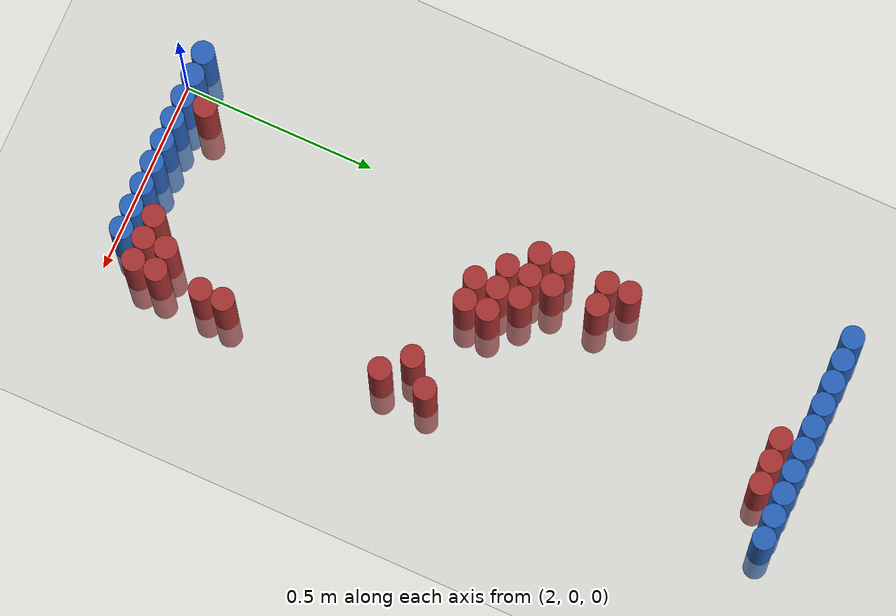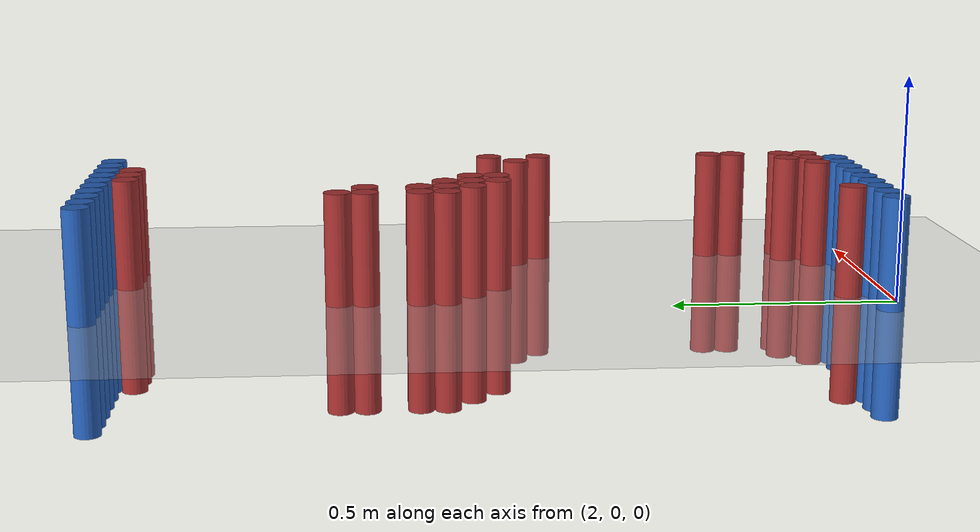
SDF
<sdf version="1.6">
 <world name="default">
  <model name="ground_plane">
   <static>1</static>
   <link name="link">
    <collision name="collision">
     <geometry><plane><normal>0 0 1</normal><size>100 100</size></plane></geometry>
     <surface><friction><ode><mu>100</mu><mu2>50</mu2></ode></friction></surface>
    </collision>
    <visual name="visual">
     <cast_shadows>0</cast_shadows>
     <geometry><plane><normal>0 0 1</normal><size>100 100</size></plane></geometry>
     <material>
      <script><uri>file://media/materials/scripts/gazebo.material</uri><name>Gazebo/Grey</name></script>
     </material>
    </visual>
   </link>
  </model>
  <model name="unit_cylinder_91">
   <static>1</static>
   <pose>1.950000 0.030000 0.000000 0.000000 0.000000 0.000000</pose>
   <link name="link">
    <inertial>
     <mass>1</mass>
     <inertia><ixx>0.145833</ixx><ixy>0</ixy><ixz>0</ixz><iyy>0.145833</iyy><iyz>0</iyz><izz>0.125</izz></inertia>
    </inertial>
    <collision name="collision">
     <geometry><cylinder><radius>0.030000</radius><length>0.5</length></cylinder></geometry>
    </collision>
    <visual name="visual">
     <geometry><cylinder><radius>0.030000</radius><length>0.5</length></cylinder></geometry>
     <material>
      <ambient>0.152000 0.379000 0.720000 1</ambient>
      <diffuse>0.152000 0.379000 0.720000 1</diffuse>
     </material>
     <material>
      <script><name>Gazebo/Grey</name><uri>file://media/materials/scripts/gazebo.material</uri></script>
     </material>
    </visual>
   </link>
  </model>
  <model name="unit_cylinder_92">
   <static>1</static>
   <pose>1.950000 1.770000 0.000000 0.000000 0.000000 0.000000</pose>
   <link name="link">
    <inertial>
     <mass>1</mass>
     <inertia><ixx>0.145833</ixx><ixy>0</ixy><ixz>0</ixz><iyy>0.145833</iyy><iyz>0</iyz><izz>0.125</izz></inertia>
    </inertial>
    <collision name="collision">
     <geometry><cylinder><radius>0.030000</radius><length>0.5</length></cylinder></geometry>
    </collision>
    <visual name="visual">
     <geometry><cylinder><radius>0.030000</radius><length>0.5</length></cylinder></geometry>
     <material>
      <ambient>0.152000 0.379000 0.720000 1</ambient>
      <diffuse>0.152000 0.379000 0.720000 1</diffuse>
     </material>
     <material>
      <script><name>Gazebo/Grey</name><uri>file://media/materials/scripts/gazebo.material</uri></script>
     </material>
    </visual>
   </link>
  </model>
  <model name="unit_cylinder_93">
   <static>1</static>
   <pose>2.010000 0.030000 0.000000 0.000000 0.000000 0.000000</pose>
   <link name="link">
    <inertial>
     <mass>1</mass>
     <inertia><ixx>0.145833</ixx><ixy>0</ixy><ixz>0</ixz><iyy>0.145833</iyy><iyz>0</iyz><izz>0.125</izz></inertia>
    </inertial>
    <collision name="collision">
     <geometry><cylinder><radius>0.030000</radius><length>0.5</length></cylinder></geometry>
    </collision>
    <visual name="visual">
     <geometry><cylinder><radius>0.030000</radius><length>0.5</length></cylinder></geometry>
     <material>
      <ambient>0.152000 0.379000 0.720000 1</ambient>
      <diffuse>0.152000 0.379000 0.720000 1</diffuse>
     </material>
     <material>
      <script><name>Gazebo/Grey</name><uri>file://media/materials/scripts/gazebo.material</uri></script>
     </material>
    </visual>
   </link>
  </model>
  <model name="unit_cylinder_94">
   <static>1</static>
   <pose>2.010000 1.770000 0.000000 0.000000 0.000000 0.000000</pose>
   <link name="link">
    <inertial>
     <mass>1</mass>
     <inertia><ixx>0.145833</ixx><ixy>0</ixy><ixz>0</ixz><iyy>0.145833</iyy><iyz>0</iyz><izz>0.125</izz></inertia>
    </inertial>
    <collision name="collision">
     <geometry><cylinder><radius>0.030000</radius><length>0.5</length></cylinder></geometry>
    </collision>
    <visual name="visual">
     <geometry><cylinder><radius>0.030000</radius><length>0.5</length></cylinder></geometry>
     <material>
      <ambient>0.152000 0.379000 0.720000 1</ambient>
      <diffuse>0.152000 0.379000 0.720000 1</diffuse>
     </material>
     <material>
      <script><name>Gazebo/Grey</name><uri>file://media/materials/scripts/gazebo.material</uri></script>
     </material>
    </visual>
   </link>
  </model>
  <model name="unit_cylinder_95">
   <static>1</static>
   <pose>2.070000 1.770000 0.000000 0.000000 0.000000 0.000000</pose>
   <link name="link">
    <inertial>
     <mass>1</mass>
     <inertia><ixx>0.145833</ixx><ixy>0</ixy><ixz>0</ixz><iyy>0.145833</iyy><iyz>0</iyz><izz>0.125</izz></inertia>
    </inertial>
    <collision name="collision">
     <geometry><cylinder><radius>0.030000</radius><length>0.5</length></cylinder></geometry>
    </collision>
    <visual name="visual">
     <geometry><cylinder><radius>0.030000</radius><length>0.5</length></cylinder></geometry>
     <material>
      <ambient>0.152000 0.379000 0.720000 1</ambient>
      <diffuse>0.152000 0.379000 0.720000 1</diffuse>
     </material>
     <material>
      <script><name>Gazebo/Grey</name><uri>file://media/materials/scripts/gazebo.material</uri></script>
     </material>
    </visual>
   </link>
  </model>
  <model name="unit_cylinder_96">
   <static>1</static>
   <pose>2.130000 1.770000 0.000000 0.000000 0.000000 0.000000</pose>
   <link name="link">
    <inertial>
     <mass>1</mass>
     <inertia><ixx>0.145833</ixx><ixy>0</ixy><ixz>0</ixz><iyy>0.145833</iyy><iyz>0</iyz><izz>0.125</izz></inertia>
    </inertial>
    <collision name="collision">
     <geometry><cylinder><radius>0.030000</radius><length>0.5</length></cylinder></geometry>
    </collision>
    <visual name="visual">
     <geometry><cylinder><radius>0.030000</radius><length>0.5</length></cylinder></geometry>
     <material>
      <ambient>0.152000 0.379000 0.720000 1</ambient>
      <diffuse>0.152000 0.379000 0.720000 1</diffuse>
     </material>
     <material>
      <script><name>Gazebo/Grey</name><uri>file://media/materials/scripts/gazebo.material</uri></script>
     </material>
    </visual>
   </link>
  </model>
  <model name="unit_cylinder_97">
   <static>1</static>
   <pose>2.190000 1.770000 0.000000 0.000000 0.000000 0.000000</pose>
   <link name="link">
    <inertial>
     <mass>1</mass>
     <inertia><ixx>0.145833</ixx><ixy>0</ixy><ixz>0</ixz><iyy>0.145833</iyy><iyz>0</iyz><izz>0.125</izz></inertia>
    </inertial>
    <collision name="collision">
     <geometry><cylinder><radius>0.030000</radius><length>0.5</length></cylinder></geometry>
    </collision>
    <visual name="visual">
     <geometry><cylinder><radius>0.030000</radius><length>0.5</length></cylinder></geometry>
     <material>
      <ambient>0.152000 0.379000 0.720000 1</ambient>
      <diffuse>0.152000 0.379000 0.720000 1</diffuse>
     </material>
     <material>
      <script><name>Gazebo/Grey</name><uri>file://media/materials/scripts/gazebo.material</uri></script>
     </material>
    </visual>
   </link>
  </model>
  <model name="unit_cylinder_98">
   <static>1</static>
   <pose>2.250000 1.770000 0.000000 0.000000 0.000000 0.000000</pose>
   <link name="link">
    <inertial>
     <mass>1</mass>
     <inertia><ixx>0.145833</ixx><ixy>0</ixy><ixz>0</ixz><iyy>0.145833</iyy><iyz>0</iyz><izz>0.125</izz></inertia>
    </inertial>
    <collision name="collision">
     <geometry><cylinder><radius>0.030000</radius><length>0.5</length></cylinder></geometry>
    </collision>
    <visual name="visual">
     <geometry><cylinder><radius>0.030000</radius><length>0.5</length></cylinder></geometry>
     <material>
      <ambient>0.152000 0.379000 0.720000 1</ambient>
      <diffuse>0.152000 0.379000 0.720000 1</diffuse>
     </material>
     <material>
      <script><name>Gazebo/Grey</name><uri>file://media/materials/scripts/gazebo.material</uri></script>
     </material>
    </visual>
   </link>
  </model>
  <model name="unit_cylinder_99">
   <static>1</static>
   <pose>2.310000 1.770000 0.000000 0.000000 0.000000 0.000000</pose>
   <link name="link">
    <inertial>
     <mass>1</mass>
     <inertia><ixx>0.145833</ixx><ixy>0</ixy><ixz>0</ixz><iyy>0.145833</iyy><iyz>0</iyz><izz>0.125</izz></inertia>
    </inertial>
    <collision name="collision">
     <geometry><cylinder><radius>0.030000</radius><length>0.5</length></cylinder></geometry>
    </collision>
    <visual name="visual">
     <geometry><cylinder><radius>0.030000</radius><length>0.5</length></cylinder></geometry>
     <material>
      <ambient>0.152000 0.379000 0.720000 1</ambient>
      <diffuse>0.152000 0.379000 0.720000 1</diffuse>
     </material>
     <material>
      <script><name>Gazebo/Grey</name><uri>file://media/materials/scripts/gazebo.material</uri></script>
     </material>
    </visual>
   </link>
  </model>
  <model name="unit_cylinder_100">
   <static>1</static>
   <pose>2.370000 1.770000 0.000000 0.000000 0.000000 0.000000</pose>
   <link name="link">
    <inertial>
     <mass>1</mass>
     <inertia><ixx>0.145833</ixx><ixy>0</ixy><ixz>0</ixz><iyy>0.145833</iyy><iyz>0</iyz><izz>0.125</izz></inertia>
    </inertial>
    <collision name="collision">
     <geometry><cylinder><radius>0.030000</radius><length>0.5</length></cylinder></geometry>
    </collision>
    <visual name="visual">
     <geometry><cylinder><radius>0.030000</radius><length>0.5</length></cylinder></geometry>
     <material>
      <ambient>0.152000 0.379000 0.720000 1</ambient>
      <diffuse>0.152000 0.379000 0.720000 1</diffuse>
     </material>
     <material>
      <script><name>Gazebo/Grey</name><uri>file://media/materials/scripts/gazebo.material</uri></script>
     </material>
    </visual>
   </link>
  </model>
  <model name="unit_cylinder_101">
   <static>1</static>
   <pose>2.430000 1.770000 0.000000 0.000000 0.000000 0.000000</pose>
   <link name="link">
    <inertial>
     <mass>1</mass>
     <inertia><ixx>0.145833</ixx><ixy>0</ixy><ixz>0</ixz><iyy>0.145833</iyy><iyz>0</iyz><izz>0.125</izz></inertia>
    </inertial>
    <collision name="collision">
     <geometry><cylinder><radius>0.030000</radius><length>0.5</length></cylinder></geometry>
    </collision>
    <visual name="visual">
     <geometry><cylinder><radius>0.030000</radius><length>0.5</length></cylinder></geometry>
     <material>
      <ambient>0.152000 0.379000 0.720000 1</ambient>
      <diffuse>0.152000 0.379000 0.720000 1</diffuse>
     </material>
     <material>
      <script><name>Gazebo/Grey</name><uri>file://media/materials/scripts/gazebo.material</uri></script>
     </material>
    </visual>
   </link>
  </model>
  <model name="unit_cylinder_102">
   <static>1</static>
   <pose>2.490000 1.770000 0.000000 0.000000 0.000000 0.000000</pose>
   <link name="link">
    <inertial>
     <mass>1</mass>
     <inertia><ixx>0.145833</ixx><ixy>0</ixy><ixz>0</ixz><iyy>0.145833</iyy><iyz>0</iyz><izz>0.125</izz></inertia>
    </inertial>
    <collision name="collision">
     <geometry><cylinder><radius>0.030000</radius><length>0.5</length></cylinder></geometry>
    </collision>
    <visual name="visual">
     <geometry><cylinder><radius>0.030000</radius><length>0.5</length></cylinder></geometry>
     <material>
      <ambient>0.152000 0.379000 0.720000 1</ambient>
      <diffuse>0.152000 0.379000 0.720000 1</diffuse>
     </material>
     <material>
      <script><name>Gazebo/Grey</name><uri>file://media/materials/scripts/gazebo.material</uri></script>
     </material>
    </visual>
   </link>
  </model>
  <model name="unit_cylinder_125">
   <static>1</static>
   <pose>2.250000 1.710000 0.000000 0.000000 0.000000 0.000000</pose>
   <link name="link">
    <inertial>
     <mass>1</mass>
     <inertia><ixx>0.145833</ixx><ixy>0</ixy><ixz>0</ixz><iyy>0.145833</iyy><iyz>0</iyz><izz>0.125</izz></inertia>
    </inertial>
    <collision name="collision">
     <geometry><cylinder><radius>0.030000</radius><length>0.5</length></cylinder></geometry>
    </collision>
    <visual name="visual">
     <geometry><cylinder><radius>0.030000</radius><length>0.5</length></cylinder></geometry>
     <material>
      <ambient>0.648000 0.192000 0.192000 1</ambient>
      <diffuse>0.648000 0.192000 0.192000 1</diffuse>
     </material>
     <material>
      <script><name>Gazebo/Grey</name><uri>file://media/materials/scripts/gazebo.material</uri></script>
     </material>
    </visual>
   </link>
  </model>
  <model name="unit_cylinder_126">
   <static>1</static>
   <pose>2.310000 1.710000 0.000000 0.000000 0.000000 0.000000</pose>
   <link name="link">
    <inertial>
     <mass>1</mass>
     <inertia><ixx>0.145833</ixx><ixy>0</ixy><ixz>0</ixz><iyy>0.145833</iyy><iyz>0</iyz><izz>0.125</izz></inertia>
    </inertial>
    <collision name="collision">
     <geometry><cylinder><radius>0.030000</radius><length>0.5</length></cylinder></geometry>
    </collision>
    <visual name="visual">
     <geometry><cylinder><radius>0.030000</radius><length>0.5</length></cylinder></geometry>
     <material>
      <ambient>0.648000 0.192000 0.192000 1</ambient>
      <diffuse>0.648000 0.192000 0.192000 1</diffuse>
     </material>
     <material>
      <script><name>Gazebo/Grey</name><uri>file://media/materials/scripts/gazebo.material</uri></script>
     </material>
    </visual>
   </link>
  </model>
  <model name="unit_cylinder_127">
   <static>1</static>
   <pose>2.370000 1.710000 0.000000 0.000000 0.000000 0.000000</pose>
   <link name="link">
    <inertial>
     <mass>1</mass>
     <inertia><ixx>0.145833</ixx><ixy>0</ixy><ixz>0</ixz><iyy>0.145833</iyy><iyz>0</iyz><izz>0.125</izz></inertia>
    </inertial>
    <collision name="collision">
     <geometry><cylinder><radius>0.030000</radius><length>0.5</length></cylinder></geometry>
    </collision>
    <visual name="visual">
     <geometry><cylinder><radius>0.030000</radius><length>0.5</length></cylinder></geometry>
     <material>
      <ambient>0.648000 0.192000 0.192000 1</ambient>
      <diffuse>0.648000 0.192000 0.192000 1</diffuse>
     </material>
     <material>
      <script><name>Gazebo/Grey</name><uri>file://media/materials/scripts/gazebo.material</uri></script>
     </material>
    </visual>
   </link>
  </model>
  <model name="unit_cylinder_165">
   <static>1</static>
   <pose>2.070000 1.230000 0.000000 0.000000 0.000000 0.000000</pose>
   <link name="link">
    <inertial>
     <mass>1</mass>
     <inertia><ixx>0.145833</ixx><ixy>0</ixy><ixz>0</ixz><iyy>0.145833</iyy><iyz>0</iyz><izz>0.125</izz></inertia>
    </inertial>
    <collision name="collision">
     <geometry><cylinder><radius>0.030000</radius><length>0.5</length></cylinder></geometry>
    </collision>
    <visual name="visual">
     <geometry><cylinder><radius>0.030000</radius><length>0.5</length></cylinder></geometry>
     <material>
      <ambient>0.648000 0.192000 0.192000 1</ambient>
      <diffuse>0.648000 0.192000 0.192000 1</diffuse>
     </material>
     <material>
      <script><name>Gazebo/Grey</name><uri>file://media/materials/scripts/gazebo.material</uri></script>
     </material>
    </visual>
   </link>
  </model>
  <model name="unit_cylinder_172">
   <static>1</static>
   <pose>2.070000 1.170000 0.000000 0.000000 0.000000 0.000000</pose>
   <link name="link">
    <inertial>
     <mass>1</mass>
     <inertia><ixx>0.145833</ixx><ixy>0</ixy><ixz>0</ixz><iyy>0.145833</iyy><iyz>0</iyz><izz>0.125</izz></inertia>
    </inertial>
    <collision name="collision">
     <geometry><cylinder><radius>0.030000</radius><length>0.5</length></cylinder></geometry>
    </collision>
    <visual name="visual">
     <geometry><cylinder><radius>0.030000</radius><length>0.5</length></cylinder></geometry>
     <material>
      <ambient>0.648000 0.192000 0.192000 1</ambient>
      <diffuse>0.648000 0.192000 0.192000 1</diffuse>
     </material>
     <material>
      <script><name>Gazebo/Grey</name><uri>file://media/materials/scripts/gazebo.material</uri></script>
     </material>
    </visual>
   </link>
  </model>
  <model name="unit_cylinder_173">
   <static>1</static>
   <pose>2.130000 1.170000 0.000000 0.000000 0.000000 0.000000</pose>
   <link name="link">
    <inertial>
     <mass>1</mass>
     <inertia><ixx>0.145833</ixx><ixy>0</ixy><ixz>0</ixz><iyy>0.145833</iyy><iyz>0</iyz><izz>0.125</izz></inertia>
    </inertial>
    <collision name="collision">
     <geometry><cylinder><radius>0.030000</radius><length>0.5</length></cylinder></geometry>
    </collision>
    <visual name="visual">
     <geometry><cylinder><radius>0.030000</radius><length>0.5</length></cylinder></geometry>
     <material>
      <ambient>0.648000 0.192000 0.192000 1</ambient>
      <diffuse>0.648000 0.192000 0.192000 1</diffuse>
     </material>
     <material>
      <script><name>Gazebo/Grey</name><uri>file://media/materials/scripts/gazebo.material</uri></script>
     </material>
    </visual>
   </link>
  </model>
  <model name="unit_cylinder_178">
   <static>1</static>
   <pose>2.070000 1.050000 0.000000 0.000000 0.000000 0.000000</pose>
   <link name="link">
    <inertial>
     <mass>1</mass>
     <inertia><ixx>0.145833</ixx><ixy>0</ixy><ixz>0</ixz><iyy>0.145833</iyy><iyz>0</iyz><izz>0.125</izz></inertia>
    </inertial>
    <collision name="collision">
     <geometry><cylinder><radius>0.030000</radius><length>0.5</length></cylinder></geometry>
    </collision>
    <visual name="visual">
     <geometry><cylinder><radius>0.030000</radius><length>0.5</length></cylinder></geometry>
     <material>
      <ambient>0.648000 0.192000 0.192000 1</ambient>
      <diffuse>0.648000 0.192000 0.192000 1</diffuse>
     </material>
     <material>
      <script><name>Gazebo/Grey</name><uri>file://media/materials/scripts/gazebo.material</uri></script>
     </material>
    </visual>
   </link>
  </model>
  <model name="unit_cylinder_179">
   <static>1</static>
   <pose>2.130000 1.050000 0.000000 0.000000 0.000000 0.000000</pose>
   <link name="link">
    <inertial>
     <mass>1</mass>
     <inertia><ixx>0.145833</ixx><ixy>0</ixy><ixz>0</ixz><iyy>0.145833</iyy><iyz>0</iyz><izz>0.125</izz></inertia>
    </inertial>
    <collision name="collision">
     <geometry><cylinder><radius>0.030000</radius><length>0.5</length></cylinder></geometry>
    </collision>
    <visual name="visual">
     <geometry><cylinder><radius>0.030000</radius><length>0.5</length></cylinder></geometry>
     <material>
      <ambient>0.648000 0.192000 0.192000 1</ambient>
      <diffuse>0.648000 0.192000 0.192000 1</diffuse>
     </material>
     <material>
      <script><name>Gazebo/Grey</name><uri>file://media/materials/scripts/gazebo.material</uri></script>
     </material>
    </visual>
   </link>
  </model>
  <model name="unit_cylinder_181">
   <static>1</static>
   <pose>2.070000 0.990000 0.000000 0.000000 0.000000 0.000000</pose>
   <link name="link">
    <inertial>
     <mass>1</mass>
     <inertia><ixx>0.145833</ixx><ixy>0</ixy><ixz>0</ixz><iyy>0.145833</iyy><iyz>0</iyz><izz>0.125</izz></inertia>
    </inertial>
    <collision name="collision">
     <geometry><cylinder><radius>0.030000</radius><length>0.5</length></cylinder></geometry>
    </collision>
    <visual name="visual">
     <geometry><cylinder><radius>0.030000</radius><length>0.5</length></cylinder></geometry>
     <material>
      <ambient>0.648000 0.192000 0.192000 1</ambient>
      <diffuse>0.648000 0.192000 0.192000 1</diffuse>
     </material>
     <material>
      <script><name>Gazebo/Grey</name><uri>file://media/materials/scripts/gazebo.material</uri></script>
     </material>
    </visual>
   </link>
  </model>
  <model name="unit_cylinder_182">
   <static>1</static>
   <pose>2.130000 0.990000 0.000000 0.000000 0.000000 0.000000</pose>
   <link name="link">
    <inertial>
     <mass>1</mass>
     <inertia><ixx>0.145833</ixx><ixy>0</ixy><ixz>0</ixz><iyy>0.145833</iyy><iyz>0</iyz><izz>0.125</izz></inertia>
    </inertial>
    <collision name="collision">
     <geometry><cylinder><radius>0.030000</radius><length>0.5</length></cylinder></geometry>
    </collision>
    <visual name="visual">
     <geometry><cylinder><radius>0.030000</radius><length>0.5</length></cylinder></geometry>
     <material>
      <ambient>0.648000 0.192000 0.192000 1</ambient>
      <diffuse>0.648000 0.192000 0.192000 1</diffuse>
     </material>
     <material>
      <script><name>Gazebo/Grey</name><uri>file://media/materials/scripts/gazebo.material</uri></script>
     </material>
    </visual>
   </link>
  </model>
  <model name="unit_cylinder_183">
   <static>1</static>
   <pose>2.190000 0.990000 0.000000 0.000000 0.000000 0.000000</pose>
   <link name="link">
    <inertial>
     <mass>1</mass>
     <inertia><ixx>0.145833</ixx><ixy>0</ixy><ixz>0</ixz><iyy>0.145833</iyy><iyz>0</iyz><izz>0.125</izz></inertia>
    </inertial>
    <collision name="collision">
     <geometry><cylinder><radius>0.030000</radius><length>0.5</length></cylinder></geometry>
    </collision>
    <visual name="visual">
     <geometry><cylinder><radius>0.030000</radius><length>0.5</length></cylinder></geometry>
     <material>
      <ambient>0.648000 0.192000 0.192000 1</ambient>
      <diffuse>0.648000 0.192000 0.192000 1</diffuse>
     </material>
     <material>
      <script><name>Gazebo/Grey</name><uri>file://media/materials/scripts/gazebo.material</uri></script>
     </material>
    </visual>
   </link>
  </model>
  <model name="unit_cylinder_184">
   <static>1</static>
   <pose>2.130000 0.930000 0.000000 0.000000 0.000000 0.000000</pose>
   <link name="link">
    <inertial>
     <mass>1</mass>
     <inertia><ixx>0.145833</ixx><ixy>0</ixy><ixz>0</ixz><iyy>0.145833</iyy><iyz>0</iyz><izz>0.125</izz></inertia>
    </inertial>
    <collision name="collision">
     <geometry><cylinder><radius>0.030000</radius><length>0.5</length></cylinder></geometry>
    </collision>
    <visual name="visual">
     <geometry><cylinder><radius>0.030000</radius><length>0.5</length></cylinder></geometry>
     <material>
      <ambient>0.648000 0.192000 0.192000 1</ambient>
      <diffuse>0.648000 0.192000 0.192000 1</diffuse>
     </material>
     <material>
      <script><name>Gazebo/Grey</name><uri>file://media/materials/scripts/gazebo.material</uri></script>
     </material>
    </visual>
   </link>
  </model>
  <model name="unit_cylinder_185">
   <static>1</static>
   <pose>2.190000 0.930000 0.000000 0.000000 0.000000 0.000000</pose>
   <link name="link">
    <inertial>
     <mass>1</mass>
     <inertia><ixx>0.145833</ixx><ixy>0</ixy><ixz>0</ixz><iyy>0.145833</iyy><iyz>0</iyz><izz>0.125</izz></inertia>
    </inertial>
    <collision name="collision">
     <geometry><cylinder><radius>0.030000</radius><length>0.5</length></cylinder></geometry>
    </collision>
    <visual name="visual">
     <geometry><cylinder><radius>0.030000</radius><length>0.5</length></cylinder></geometry>
     <material>
      <ambient>0.648000 0.192000 0.192000 1</ambient>
      <diffuse>0.648000 0.192000 0.192000 1</diffuse>
     </material>
     <material>
      <script><name>Gazebo/Grey</name><uri>file://media/materials/scripts/gazebo.material</uri></script>
     </material>
    </visual>
   </link>
  </model>
  <model name="unit_cylinder_186">
   <static>1</static>
   <pose>2.250000 0.930000 0.000000 0.000000 0.000000 0.000000</pose>
   <link name="link">
    <inertial>
     <mass>1</mass>
     <inertia><ixx>0.145833</ixx><ixy>0</ixy><ixz>0</ixz><iyy>0.145833</iyy><iyz>0</iyz><izz>0.125</izz></inertia>
    </inertial>
    <collision name="collision">
     <geometry><cylinder><radius>0.030000</radius><length>0.5</length></cylinder></geometry>
    </collision>
    <visual name="visual">
     <geometry><cylinder><radius>0.030000</radius><length>0.5</length></cylinder></geometry>
     <material>
      <ambient>0.648000 0.192000 0.192000 1</ambient>
      <diffuse>0.648000 0.192000 0.192000 1</diffuse>
     </material>
     <material>
      <script><name>Gazebo/Grey</name><uri>file://media/materials/scripts/gazebo.material</uri></script>
     </material>
    </visual>
   </link>
  </model>
  <model name="unit_cylinder_187">
   <static>1</static>
   <pose>2.190000 0.870000 0.000000 0.000000 0.000000 0.000000</pose>
   <link name="link">
    <inertial>
     <mass>1</mass>
     <inertia><ixx>0.145833</ixx><ixy>0</ixy><ixz>0</ixz><iyy>0.145833</iyy><iyz>0</iyz><izz>0.125</izz></inertia>
    </inertial>
    <collision name="collision">
     <geometry><cylinder><radius>0.030000</radius><length>0.5</length></cylinder></geometry>
    </collision>
    <visual name="visual">
     <geometry><cylinder><radius>0.030000</radius><length>0.5</length></cylinder></geometry>
     <material>
      <ambient>0.648000 0.192000 0.192000 1</ambient>
      <diffuse>0.648000 0.192000 0.192000 1</diffuse>
     </material>
     <material>
      <script><name>Gazebo/Grey</name><uri>file://media/materials/scripts/gazebo.material</uri></script>
     </material>
    </visual>
   </link>
  </model>
  <model name="unit_cylinder_188">
   <static>1</static>
   <pose>2.250000 0.870000 0.000000 0.000000 0.000000 0.000000</pose>
   <link name="link">
    <inertial>
     <mass>1</mass>
     <inertia><ixx>0.145833</ixx><ixy>0</ixy><ixz>0</ixz><iyy>0.145833</iyy><iyz>0</iyz><izz>0.125</izz></inertia>
    </inertial>
    <collision name="collision">
     <geometry><cylinder><radius>0.030000</radius><length>0.5</length></cylinder></geometry>
    </collision>
    <visual name="visual">
     <geometry><cylinder><radius>0.030000</radius><length>0.5</length></cylinder></geometry>
     <material>
      <ambient>0.648000 0.192000 0.192000 1</ambient>
      <diffuse>0.648000 0.192000 0.192000 1</diffuse>
     </material>
     <material>
      <script><name>Gazebo/Grey</name><uri>file://media/materials/scripts/gazebo.material</uri></script>
     </material>
    </visual>
   </link>
  </model>
  <model name="unit_cylinder_189">
   <static>1</static>
   <pose>2.490000 0.870000 0.000000 0.000000 0.000000 0.000000</pose>
   <link name="link">
    <inertial>
     <mass>1</mass>
     <inertia><ixx>0.145833</ixx><ixy>0</ixy><ixz>0</ixz><iyy>0.145833</iyy><iyz>0</iyz><izz>0.125</izz></inertia>
    </inertial>
    <collision name="collision">
     <geometry><cylinder><radius>0.030000</radius><length>0.5</length></cylinder></geometry>
    </collision>
    <visual name="visual">
     <geometry><cylinder><radius>0.030000</radius><length>0.5</length></cylinder></geometry>
     <material>
      <ambient>0.648000 0.192000 0.192000 1</ambient>
      <diffuse>0.648000 0.192000 0.192000 1</diffuse>
     </material>
     <material>
      <script><name>Gazebo/Grey</name><uri>file://media/materials/scripts/gazebo.material</uri></script>
     </material>
    </visual>
   </link>
  </model>
  <model name="unit_cylinder_190">
   <static>1</static>
   <pose>2.430000 0.810000 0.000000 0.000000 0.000000 0.000000</pose>
   <link name="link">
    <inertial>
     <mass>1</mass>
     <inertia><ixx>0.145833</ixx><ixy>0</ixy><ixz>0</ixz><iyy>0.145833</iyy><iyz>0</iyz><izz>0.125</izz></inertia>
    </inertial>
    <collision name="collision">
     <geometry><cylinder><radius>0.030000</radius><length>0.5</length></cylinder></geometry>
    </collision>
    <visual name="visual">
     <geometry><cylinder><radius>0.030000</radius><length>0.5</length></cylinder></geometry>
     <material>
      <ambient>0.648000 0.192000 0.192000 1</ambient>
      <diffuse>0.648000 0.192000 0.192000 1</diffuse>
     </material>
     <material>
      <script><name>Gazebo/Grey</name><uri>file://media/materials/scripts/gazebo.material</uri></script>
     </material>
    </visual>
   </link>
  </model>
  <model name="unit_cylinder_192">
   <static>1</static>
   <pose>2.490000 0.750000 0.000000 0.000000 0.000000 0.000000</pose>
   <link name="link">
    <inertial>
     <mass>1</mass>
     <inertia><ixx>0.145833</ixx><ixy>0</ixy><ixz>0</ixz><iyy>0.145833</iyy><iyz>0</iyz><izz>0.125</izz></inertia>
    </inertial>
    <collision name="collision">
     <geometry><cylinder><radius>0.030000</radius><length>0.5</length></cylinder></geometry>
    </collision>
    <visual name="visual">
     <geometry><cylinder><radius>0.030000</radius><length>0.5</length></cylinder></geometry>
     <material>
      <ambient>0.648000 0.192000 0.192000 1</ambient>
      <diffuse>0.648000 0.192000 0.192000 1</diffuse>
     </material>
     <material>
      <script><name>Gazebo/Grey</name><uri>file://media/materials/scripts/gazebo.material</uri></script>
     </material>
    </visual>
   </link>
  </model>
  <model name="unit_cylinder_209">
   <static>1</static>
   <pose>2.490000 0.330000 0.000000 0.000000 0.000000 0.000000</pose>
   <link name="link">
    <inertial>
     <mass>1</mass>
     <inertia><ixx>0.145833</ixx><ixy>0</ixy><ixz>0</ixz><iyy>0.145833</iyy><iyz>0</iyz><izz>0.125</izz></inertia>
    </inertial>
    <collision name="collision">
     <geometry><cylinder><radius>0.030000</radius><length>0.5</length></cylinder></geometry>
    </collision>
    <visual name="visual">
     <geometry><cylinder><radius>0.030000</radius><length>0.5</length></cylinder></geometry>
     <material>
      <ambient>0.648000 0.192000 0.192000 1</ambient>
      <diffuse>0.648000 0.192000 0.192000 1</diffuse>
     </material>
     <material>
      <script><name>Gazebo/Grey</name><uri>file://media/materials/scripts/gazebo.material</uri></script>
     </material>
    </visual>
   </link>
  </model>
  <model name="unit_cylinder_215">
   <static>1</static>
   <pose>2.490000 0.270000 0.000000 0.000000 0.000000 0.000000</pose>
   <link name="link">
    <inertial>
     <mass>1</mass>
     <inertia><ixx>0.145833</ixx><ixy>0</ixy><ixz>0</ixz><iyy>0.145833</iyy><iyz>0</iyz><izz>0.125</izz></inertia>
    </inertial>
    <collision name="collision">
     <geometry><cylinder><radius>0.030000</radius><length>0.5</length></cylinder></geometry>
    </collision>
    <visual name="visual">
     <geometry><cylinder><radius>0.030000</radius><length>0.5</length></cylinder></geometry>
     <material>
      <ambient>0.648000 0.192000 0.192000 1</ambient>
      <diffuse>0.648000 0.192000 0.192000 1</diffuse>
     </material>
     <material>
      <script><name>Gazebo/Grey</name><uri>file://media/materials/scripts/gazebo.material</uri></script>
     </material>
    </visual>
   </link>
  </model>
  <model name="unit_cylinder_218">
   <static>1</static>
   <pose>2.430000 0.150000 0.000000 0.000000 0.000000 0.000000</pose>
   <link name="link">
    <inertial>
     <mass>1</mass>
     <inertia><ixx>0.145833</ixx><ixy>0</ixy><ixz>0</ixz><iyy>0.145833</iyy><iyz>0</iyz><izz>0.125</izz></inertia>
    </inertial>
    <collision name="collision">
     <geometry><cylinder><radius>0.030000</radius><length>0.5</length></cylinder></geometry>
    </collision>
    <visual name="visual">
     <geometry><cylinder><radius>0.030000</radius><length>0.5</length></cylinder></geometry>
     <material>
      <ambient>0.648000 0.192000 0.192000 1</ambient>
      <diffuse>0.648000 0.192000 0.192000 1</diffuse>
     </material>
     <material>
      <script><name>Gazebo/Grey</name><uri>file://media/materials/scripts/gazebo.material</uri></script>
     </material>
    </visual>
   </link>
  </model>
  <model name="unit_cylinder_219">
   <static>1</static>
   <pose>2.490000 0.150000 0.000000 0.000000 0.000000 0.000000</pose>
   <link name="link">
    <inertial>
     <mass>1</mass>
     <inertia><ixx>0.145833</ixx><ixy>0</ixy><ixz>0</ixz><iyy>0.145833</iyy><iyz>0</iyz><izz>0.125</izz></inertia>
    </inertial>
    <collision name="collision">
     <geometry><cylinder><radius>0.030000</radius><length>0.5</length></cylinder></geometry>
    </collision>
    <visual name="visual">
     <geometry><cylinder><radius>0.030000</radius><length>0.5</length></cylinder></geometry>
     <material>
      <ambient>0.648000 0.192000 0.192000 1</ambient>
      <diffuse>0.648000 0.192000 0.192000 1</diffuse>
     </material>
     <material>
      <script><name>Gazebo/Grey</name><uri>file://media/materials/scripts/gazebo.material</uri></script>
     </material>
    </visual>
   </link>
  </model>
  <model name="unit_cylinder_224">
   <static>1</static>
   <pose>2.070000 0.090000 0.000000 0.000000 0.000000 0.000000</pose>
   <link name="link">
    <inertial>
     <mass>1</mass>
     <inertia><ixx>0.145833</ixx><ixy>0</ixy><ixz>0</ixz><iyy>0.145833</iyy><iyz>0</iyz><izz>0.125</izz></inertia>
    </inertial>
    <collision name="collision">
     <geometry><cylinder><radius>0.030000</radius><length>0.5</length></cylinder></geometry>
    </collision>
    <visual name="visual">
     <geometry><cylinder><radius>0.030000</radius><length>0.5</length></cylinder></geometry>
     <material>
      <ambient>0.648000 0.192000 0.192000 1</ambient>
      <diffuse>0.648000 0.192000 0.192000 1</diffuse>
     </material>
     <material>
      <script><name>Gazebo/Grey</name><uri>file://media/materials/scripts/gazebo.material</uri></script>
     </material>
    </visual>
   </link>
  </model>
  <model name="unit_cylinder_225">
   <static>1</static>
   <pose>2.370000 0.090000 0.000000 0.000000 0.000000 0.000000</pose>
   <link name="link">
    <inertial>
     <mass>1</mass>
     <inertia><ixx>0.145833</ixx><ixy>0</ixy><ixz>0</ixz><iyy>0.145833</iyy><iyz>0</iyz><izz>0.125</izz></inertia>
    </inertial>
    <collision name="collision">
     <geometry><cylinder><radius>0.030000</radius><length>0.5</length></cylinder></geometry>
    </collision>
    <visual name="visual">
     <geometry><cylinder><radius>0.030000</radius><length>0.5</length></cylinder></geometry>
     <material>
      <ambient>0.648000 0.192000 0.192000 1</ambient>
      <diffuse>0.648000 0.192000 0.192000 1</diffuse>
     </material>
     <material>
      <script><name>Gazebo/Grey</name><uri>file://media/materials/scripts/gazebo.material</uri></script>
     </material>
    </visual>
   </link>
  </model>
  <model name="unit_cylinder_226">
   <static>1</static>
   <pose>2.430000 0.090000 0.000000 0.000000 0.000000 0.000000</pose>
   <link name="link">
    <inertial>
     <mass>1</mass>
     <inertia><ixx>0.145833</ixx><ixy>0</ixy><ixz>0</ixz><iyy>0.145833</iyy><iyz>0</iyz><izz>0.125</izz></inertia>
    </inertial>
    <collision name="collision">
     <geometry><cylinder><radius>0.030000</radius><length>0.5</length></cylinder></geometry>
    </collision>
    <visual name="visual">
     <geometry><cylinder><radius>0.030000</radius><length>0.5</length></cylinder></geometry>
     <material>
      <ambient>0.648000 0.192000 0.192000 1</ambient>
      <diffuse>0.648000 0.192000 0.192000 1</diffuse>
     </material>
     <material>
      <script><name>Gazebo/Grey</name><uri>file://media/materials/scripts/gazebo.material</uri></script>
     </material>
    </visual>
   </link>
  </model>
  <model name="unit_cylinder_227">
   <static>1</static>
   <pose>2.490000 0.090000 0.000000 0.000000 0.000000 0.000000</pose>
   <link name="link">
    <inertial>
     <mass>1</mass>
     <inertia><ixx>0.145833</ixx><ixy>0</ixy><ixz>0</ixz><iyy>0.145833</iyy><iyz>0</iyz><izz>0.125</izz></inertia>
    </inertial>
    <collision name="collision">
     <geometry><cylinder><radius>0.030000</radius><length>0.5</length></cylinder></geometry>
    </collision>
    <visual name="visual">
     <geometry><cylinder><radius>0.030000</radius><length>0.5</length></cylinder></geometry>
     <material>
      <ambient>0.648000 0.192000 0.192000 1</ambient>
      <diffuse>0.648000 0.192000 0.192000 1</diffuse>
     </material>
     <material>
      <script><name>Gazebo/Grey</name><uri>file://media/materials/scripts/gazebo.material</uri></script>
     </material>
    </visual>
   </link>
  </model>
  <model name="unit_cylinder_243">
   <static>1</static>
   <pose>2.070000 0.030000 0.000000 0.000000 0.000000 0.000000</pose>
   <link name="link">
    <inertial>
     <mass>1</mass>
     <inertia><ixx>0.145833</ixx><ixy>0</ixy><ixz>0</ixz><iyy>0.145833</iyy><iyz>0</iyz><izz>0.125</izz></inertia>
    </inertial>
    <collision name="collision">
     <geometry><cylinder><radius>0.030000</radius><length>0.5</length></cylinder></geometry>
    </collision>
    <visual name="visual">
     <geometry><cylinder><radius>0.030000</radius><length>0.5</length></cylinder></geometry>
     <material>
      <ambient>0.152000 0.379000 0.720000 1</ambient>
      <diffuse>0.152000 0.379000 0.720000 1</diffuse>
     </material>
     <material>
      <script><name>Gazebo/Grey</name><uri>file://media/materials/scripts/gazebo.material</uri></script>
     </material>
    </visual>
   </link>
  </model>
  <model name="unit_cylinder_244">
   <static>1</static>
   <pose>2.130000 0.030000 0.000000 0.000000 0.000000 0.000000</pose>
   <link name="link">
    <inertial>
     <mass>1</mass>
     <inertia><ixx>0.145833</ixx><ixy>0</ixy><ixz>0</ixz><iyy>0.145833</iyy><iyz>0</iyz><izz>0.125</izz></inertia>
    </inertial>
    <collision name="collision">
     <geometry><cylinder><radius>0.030000</radius><length>0.5</length></cylinder></geometry>
    </collision>
    <visual name="visual">
     <geometry><cylinder><radius>0.030000</radius><length>0.5</length></cylinder></geometry>
     <material>
      <ambient>0.152000 0.379000 0.720000 1</ambient>
      <diffuse>0.152000 0.379000 0.720000 1</diffuse>
     </material>
     <material>
      <script><name>Gazebo/Grey</name><uri>file://media/materials/scripts/gazebo.material</uri></script>
     </material>
    </visual>
   </link>
  </model>
  <model name="unit_cylinder_245">
   <static>1</static>
   <pose>2.190000 0.030000 0.000000 0.000000 0.000000 0.000000</pose>
   <link name="link">
    <inertial>
     <mass>1</mass>
     <inertia><ixx>0.145833</ixx><ixy>0</ixy><ixz>0</ixz><iyy>0.145833</iyy><iyz>0</iyz><izz>0.125</izz></inertia>
    </inertial>
    <collision name="collision">
     <geometry><cylinder><radius>0.030000</radius><length>0.5</length></cylinder></geometry>
    </collision>
    <visual name="visual">
     <geometry><cylinder><radius>0.030000</radius><length>0.5</length></cylinder></geometry>
     <material>
      <ambient>0.152000 0.379000 0.720000 1</ambient>
      <diffuse>0.152000 0.379000 0.720000 1</diffuse>
     </material>
     <material>
      <script><name>Gazebo/Grey</name><uri>file://media/materials/scripts/gazebo.material</uri></script>
     </material>
    </visual>
   </link>
  </model>
  <model name="unit_cylinder_246">
   <static>1</static>
   <pose>2.250000 0.030000 0.000000 0.000000 0.000000 0.000000</pose>
   <link name="link">
    <inertial>
     <mass>1</mass>
     <inertia><ixx>0.145833</ixx><ixy>0</ixy><ixz>0</ixz><iyy>0.145833</iyy><iyz>0</iyz><izz>0.125</izz></inertia>
    </inertial>
    <collision name="collision">
     <geometry><cylinder><radius>0.030000</radius><length>0.5</length></cylinder></geometry>
    </collision>
    <visual name="visual">
     <geometry><cylinder><radius>0.030000</radius><length>0.5</length></cylinder></geometry>
     <material>
      <ambient>0.152000 0.379000 0.720000 1</ambient>
      <diffuse>0.152000 0.379000 0.720000 1</diffuse>
     </material>
     <material>
      <script><name>Gazebo/Grey</name><uri>file://media/materials/scripts/gazebo.material</uri></script>
     </material>
    </visual>
   </link>
  </model>
  <model name="unit_cylinder_247">
   <static>1</static>
   <pose>2.310000 0.030000 0.000000 0.000000 0.000000 0.000000</pose>
   <link name="link">
    <inertial>
     <mass>1</mass>
     <inertia><ixx>0.145833</ixx><ixy>0</ixy><ixz>0</ixz><iyy>0.145833</iyy><iyz>0</iyz><izz>0.125</izz></inertia>
    </inertial>
    <collision name="collision">
     <geometry><cylinder><radius>0.030000</radius><length>0.5</length></cylinder></geometry>
    </collision>
    <visual name="visual">
     <geometry><cylinder><radius>0.030000</radius><length>0.5</length></cylinder></geometry>
     <material>
      <ambient>0.152000 0.379000 0.720000 1</ambient>
      <diffuse>0.152000 0.379000 0.720000 1</diffuse>
     </material>
     <material>
      <script><name>Gazebo/Grey</name><uri>file://media/materials/scripts/gazebo.material</uri></script>
     </material>
    </visual>
   </link>
  </model>
  <model name="unit_cylinder_248">
   <static>1</static>
   <pose>2.370000 0.030000 0.000000 0.000000 0.000000 0.000000</pose>
   <link name="link">
    <inertial>
     <mass>1</mass>
     <inertia><ixx>0.145833</ixx><ixy>0</ixy><ixz>0</ixz><iyy>0.145833</iyy><iyz>0</iyz><izz>0.125</izz></inertia>
    </inertial>
    <collision name="collision">
     <geometry><cylinder><radius>0.030000</radius><length>0.5</length></cylinder></geometry>
    </collision>
    <visual name="visual">
     <geometry><cylinder><radius>0.030000</radius><length>0.5</length></cylinder></geometry>
     <material>
      <ambient>0.152000 0.379000 0.720000 1</ambient>
      <diffuse>0.152000 0.379000 0.720000 1</diffuse>
     </material>
     <material>
      <script><name>Gazebo/Grey</name><uri>file://media/materials/scripts/gazebo.material</uri></script>
     </material>
    </visual>
   </link>
  </model>
  <model name="unit_cylinder_249">
   <static>1</static>
   <pose>2.430000 0.030000 0.000000 0.000000 0.000000 0.000000</pose>
   <link name="link">
    <inertial>
     <mass>1</mass>
     <inertia><ixx>0.145833</ixx><ixy>0</ixy><ixz>0</ixz><iyy>0.145833</iyy><iyz>0</iyz><izz>0.125</izz></inertia>
    </inertial>
    <collision name="collision">
     <geometry><cylinder><radius>0.030000</radius><length>0.5</length></cylinder></geometry>
    </collision>
    <visual name="visual">
     <geometry><cylinder><radius>0.030000</radius><length>0.5</length></cylinder></geometry>
     <material>
      <ambient>0.152000 0.379000 0.720000 1</ambient>
      <diffuse>0.152000 0.379000 0.720000 1</diffuse>
     </material>
     <material>
      <script><name>Gazebo/Grey</name><uri>file://media/materials/scripts/gazebo.material</uri></script>
     </material>
    </visual>
   </link>
  </model>
 </world>
</sdf>
